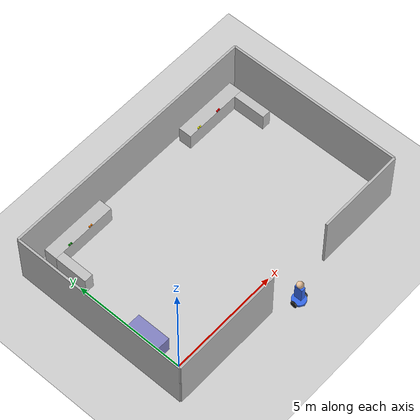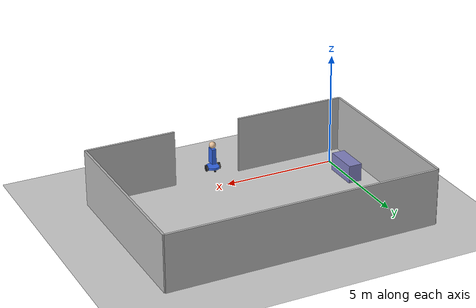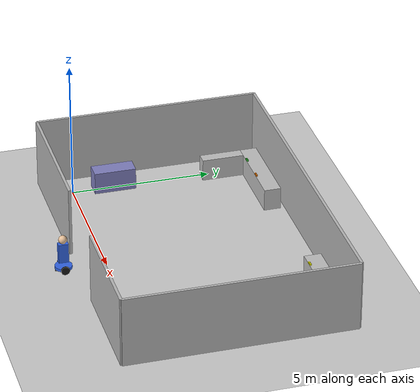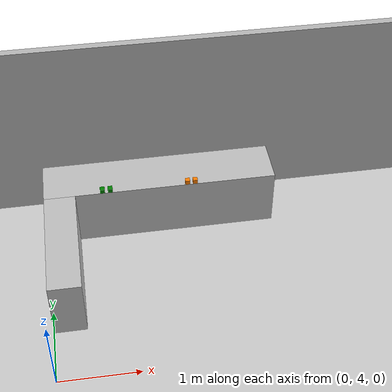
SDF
<?xml version="1.0"?>
<sdf version="1.6">
  <world name="mart">

    <include>
      <uri>model://ground_plane</uri>
    </include>
    <include>
      <uri>model://sun</uri>
    </include>

    <physics type="ode">
      <real_time_update_rate>1000.0</real_time_update_rate>
      <max_step_size>0.001</max_step_size>
      <real_time_factor>1.0</real_time_factor>
      <ode>
        <solver>
          <type>quick</type>
          <iters>150</iters>
          <sor>1.4</sor>
        </solver>
        <constraints>
          <cfm>1e-5</cfm>
          <erp>0.2</erp>
        </constraints>
      </ode>
    </physics>

    <model name="boundary_walls">
      <static>true</static>
      <pose>5 3 1.25 0 0 0</pose>
      <link name="link">
        <visual name="n_v">
          <pose>0 4 0 0 0 0</pose>
          <geometry><box><size>12.0 0.1 2.5</size></box></geometry>
        </visual>
        <collision name="n_c">
          <pose>0 4 0 0 0 0</pose>
          <geometry><box><size>12.0 0.1 2.5</size></box></geometry>
        </collision>
        <visual name="e_v">
          <pose>6 0 0 0 0 1.5708</pose>
          <geometry><box><size>8.0 0.1 2.5</size></box></geometry>
        </visual>
        <collision name="e_c">
          <pose>6 0 0 0 0 1.5708</pose>
          <geometry><box><size>8.0 0.1 2.5</size></box></geometry>
        </collision>
        <visual name="w_v">
          <pose>-6 0 0 0 0 1.5708</pose>
          <geometry><box><size>8.0 0.1 2.5</size></box></geometry>
        </visual>
        <collision name="w_c">
          <pose>-6 0 0 0 0 1.5708</pose>
          <geometry><box><size>8.0 0.1 2.5</size></box></geometry>
        </collision>
        <visual name="s_v_left">
          <pose>-3.5 -4 0 0 0 0</pose>
          <geometry><box><size>5.0 0.1 2.5</size></box></geometry>
        </visual>
        <collision name="s_c_left">
          <pose>-3.5 -4 0 0 0 0</pose>
          <geometry><box><size>5.0 0.1 2.5</size></box></geometry>
        </collision>
        <visual name="s_v_right">
          <pose>4.0 -4 0 0 0 0</pose>
          <geometry><box><size>4.0 0.1 2.5</size></box></geometry>
        </visual>
        <collision name="s_c_right">
          <pose>4.0 -4 0 0 0 0</pose>
          <geometry><box><size>4.0 0.1 2.5</size></box></geometry>
        </collision>
      </link>
    </model>

    <!-- 과일 진열대 (회색) -->
    <model name="shelf_fruits_group">
      <static>true</static>
      <pose>9.0 6.5 0.4 0 0 0</pose>
      <link name="link">
        <collision name="h_c">
          <pose>0 0 0 0 0 0</pose>
          <geometry><box><size>3.0 0.6 0.8</size></box></geometry>
        </collision>
        <visual name="h_v">
          <pose>0 0 0 0 0 0</pose>
          <geometry><box><size>3.0 0.6 0.8</size></box></geometry>
          <material>
            <ambient>0.75 0.75 0.75 1</ambient>
            <diffuse>0.75 0.75 0.75 1</diffuse>
          </material>
        </visual>
        <collision name="v_c">
          <pose>1.3 -1.05 0 0 0 0</pose>
          <geometry><box><size>0.4 1.5 0.8</size></box></geometry>
        </collision>
        <visual name="v_v">
          <pose>1.3 -1.05 0 0 0 0</pose>
          <geometry><box><size>0.4 1.5 0.8</size></box></geometry>
          <material>
            <ambient>0.75 0.75 0.75 1</ambient>
            <diffuse>0.75 0.75 0.75 1</diffuse>
          </material>
        </visual>
      </link>
    </model>

    <!-- 채소 진열대 (회색) -->
    <model name="shelf_veg_group">
      <static>true</static>
      <pose>1.5 6.5 0.4 0 0 0</pose>
      <link name="link">
        <collision name="h_c">
          <pose>0 0 0 0 0 0</pose>
          <geometry><box><size>3.0 0.6 0.8</size></box></geometry>
        </collision>
        <visual name="h_v">
          <pose>0 0 0 0 0 0</pose>
          <geometry><box><size>3.0 0.6 0.8</size></box></geometry>
          <material>
            <ambient>0.75 0.75 0.75 1</ambient>
            <diffuse>0.75 0.75 0.75 1</diffuse>
          </material>
        </visual>
        <collision name="v_c">
          <pose>-1.3 -1.05 0 0 0 0</pose>
          <geometry><box><size>0.4 1.5 0.8</size></box></geometry>
        </collision>
        <visual name="v_v">
          <pose>-1.3 -1.05 0 0 0 0</pose>
          <geometry><box><size>0.4 1.5 0.8</size></box></geometry>
          <material>
            <ambient>0.75 0.75 0.75 1</ambient>
            <diffuse>0.75 0.75 0.75 1</diffuse>
          </material>
        </visual>
      </link>
    </model>

    <!-- 바나나 x2 (노란색) -->
    <model name="banana_1">
      <static>false</static>
      <pose>8.0 6.23 0.83 0 0 0</pose>
      <link name="l">
        <inertial><mass>0.1</mass></inertial>
        <collision name="c">
          <geometry><box><size>0.06 0.06 0.06</size></box></geometry>
          <surface><friction><ode><mu>1.0</mu><mu2>1.0</mu2></ode></friction></surface>
        </collision>
        <visual name="v">
          <geometry><box><size>0.06 0.06 0.06</size></box></geometry>
          <material><ambient>1 1 0 1</ambient><diffuse>1 1 0 1</diffuse></material>
        </visual>
      </link>
    </model>

    <model name="banana_2">
      <static>false</static>
      <pose>8.1 6.23 0.83 0 0 0</pose>
      <link name="l">
        <inertial><mass>0.1</mass></inertial>
        <collision name="c">
          <geometry><box><size>0.06 0.06 0.06</size></box></geometry>
          <surface><friction><ode><mu>1.0</mu><mu2>1.0</mu2></ode></friction></surface>
        </collision>
        <visual name="v">
          <geometry><box><size>0.06 0.06 0.06</size></box></geometry>
          <material><ambient>1 1 0 1</ambient><diffuse>1 1 0 1</diffuse></material>
        </visual>
      </link>
    </model>

    <!-- 사과 x2 (빨간색) -->
    <model name="apple_1">
      <static>false</static>
      <pose>9.1 6.23 0.83 0 0 0</pose>
      <link name="l">
        <inertial><mass>0.1</mass></inertial>
        <collision name="c">
          <geometry><box><size>0.06 0.06 0.06</size></box></geometry>
          <surface><friction><ode><mu>1.0</mu><mu2>1.0</mu2></ode></friction></surface>
        </collision>
        <visual name="v">
          <geometry><box><size>0.06 0.06 0.06</size></box></geometry>
          <material><ambient>1 0 0 1</ambient><diffuse>1 0 0 1</diffuse></material>
        </visual>
      </link>
    </model>

    <model name="apple_2">
      <static>false</static>
      <pose>9.2 6.23 0.83 0 0 0</pose>
      <link name="l">
        <inertial><mass>0.1</mass></inertial>
        <collision name="c">
          <geometry><box><size>0.06 0.06 0.06</size></box></geometry>
          <surface><friction><ode><mu>1.0</mu><mu2>1.0</mu2></ode></friction></surface>
        </collision>
        <visual name="v">
          <geometry><box><size>0.06 0.06 0.06</size></box></geometry>
          <material><ambient>1 0 0 1</ambient><diffuse>1 0 0 1</diffuse></material>
        </visual>
      </link>
    </model>

    <!-- 브로콜리 x2 (초록색) -->
    <model name="broccoli_1">
      <static>false</static>
      <pose>0.75 6.23 0.83 0 0 0</pose>
      <link name="l">
        <inertial><mass>0.1</mass></inertial>
        <collision name="c">
          <geometry><box><size>0.06 0.06 0.06</size></box></geometry>
          <surface><friction><ode><mu>1.0</mu><mu2>1.0</mu2></ode></friction></surface>
        </collision>
        <visual name="v">
          <geometry><box><size>0.06 0.06 0.06</size></box></geometry>
          <material><ambient>0 0.5 0 1</ambient><diffuse>0 0.5 0 1</diffuse></material>
        </visual>
      </link>
    </model>

    <model name="broccoli_2">
      <static>false</static>
      <pose>0.85 6.23 0.83 0 0 0</pose>
      <link name="l">
        <inertial><mass>0.1</mass></inertial>
        <collision name="c">
          <geometry><box><size>0.06 0.06 0.06</size></box></geometry>
          <surface><friction><ode><mu>1.0</mu><mu2>1.0</mu2></ode></friction></surface>
        </collision>
        <visual name="v">
          <geometry><box><size>0.06 0.06 0.06</size></box></geometry>
          <material><ambient>0 0.5 0 1</ambient><diffuse>0 0.5 0 1</diffuse></material>
        </visual>
      </link>
    </model>

    <!-- 당근 x2 (주황색) -->
    <model name="carrot_1">
      <static>false</static>
      <pose>1.85 6.23 0.83 0 0 0</pose>
      <link name="l">
        <inertial><mass>0.1</mass></inertial>
        <collision name="c">
          <geometry><box><size>0.06 0.06 0.06</size></box></geometry>
          <surface><friction><ode><mu>1.0</mu><mu2>1.0</mu2></ode></friction></surface>
        </collision>
        <visual name="v">
          <geometry><box><size>0.06 0.06 0.06</size></box></geometry>
          <material><ambient>1 0.5 0 1</ambient><diffuse>1 0.5 0 1</diffuse></material>
        </visual>
      </link>
    </model>

    <model name="carrot_2">
      <static>false</static>
      <pose>1.95 6.23 0.83 0 0 0</pose>
      <link name="l">
        <inertial><mass>0.1</mass></inertial>
        <collision name="c">
          <geometry><box><size>0.06 0.06 0.06</size></box></geometry>
          <surface><friction><ode><mu>1.0</mu><mu2>1.0</mu2></ode></friction></surface>
        </collision>
        <visual name="v">
          <geometry><box><size>0.06 0.06 0.06</size></box></geometry>
          <material><ambient>1 0.5 0 1</ambient><diffuse>1 0.5 0 1</diffuse></material>
        </visual>
      </link>
    </model>

    <model name="checkout_counter">
      <static>true</static>
      <pose>0.0 1.5 0.4 0 0 1.5708</pose>
      <link name="link">
        <collision name="c">
          <geometry><box><size>1.5 0.6 0.8</size></box></geometry>
        </collision>
        <visual name="v">
          <geometry><box><size>1.5 0.6 0.8</size></box></geometry>
          <material>
            <ambient>0.5 0.5 0.75 1</ambient>
            <diffuse>0.5 0.5 0.75 1</diffuse>
          </material>
        </visual>
      </link>
    </model>

    <model name="person">
      <pose>5.0 -1.5 0.19 0 0 -1.5708</pose>

      <link name="base">
        <inertial>
          <mass>20.0</mass>
          <inertia>
            <ixx>1.0</ixx><ixy>0</ixy><ixz>0</ixz>
            <iyy>1.0</iyy><iyz>0</iyz><izz>0.5</izz>
          </inertia>
        </inertial>
        <visual name="base_v">
          <pose>0 0 0 0 0 0</pose>
          <geometry><cylinder><radius>0.3</radius><length>0.1</length></cylinder></geometry>
          <material><ambient>0.2 0.4 0.9 1</ambient><diffuse>0.2 0.4 0.9 1</diffuse></material>
        </visual>
        <collision name="base_c">
          <pose>0 0 0 0 0 0</pose>
          <geometry><cylinder><radius>0.3</radius><length>0.1</length></cylinder></geometry>
        </collision>
        <visual name="torso_v">
          <pose>0 0 0.55 0 0 0</pose>
          <geometry><box><size>0.35 0.2 0.7</size></box></geometry>
          <material><ambient>0.2 0.4 0.9 1</ambient><diffuse>0.2 0.4 0.9 1</diffuse></material>
        </visual>
        <visual name="head_v">
          <pose>0 0 1.05 0 0 0</pose>
          <geometry><sphere><radius>0.15</radius></sphere></geometry>
          <material><ambient>0.9 0.75 0.6 1</ambient><diffuse>0.9 0.75 0.6 1</diffuse></material>
        </visual>
      </link>

      <link name="left_wheel">
        <pose>0 0.3 0 1.5708 0 0</pose>
        <inertial>
          <mass>2.0</mass>
          <inertia><ixx>0.05</ixx><ixy>0</ixy><ixz>0</ixz><iyy>0.05</iyy><iyz>0</iyz><izz>0.05</izz></inertia>
        </inertial>
        <visual name="v">
          <geometry><cylinder><radius>0.15</radius><length>0.05</length></cylinder></geometry>
          <material><ambient>0.1 0.1 0.1 1</ambient><diffuse>0.1 0.1 0.1 1</diffuse></material>
        </visual>
        <collision name="c">
          <geometry><cylinder><radius>0.15</radius><length>0.05</length></cylinder></geometry>
          <surface><friction><ode><mu>10.0</mu><mu2>10.0</mu2></ode></friction></surface>
        </collision>
      </link>

      <link name="right_wheel">
        <pose>0 -0.3 0 1.5708 0 0</pose>
        <inertial>
          <mass>2.0</mass>
          <inertia><ixx>0.05</ixx><ixy>0</ixy><ixz>0</ixz><iyy>0.05</iyy><iyz>0</iyz><izz>0.05</izz></inertia>
        </inertial>
        <visual name="v">
          <geometry><cylinder><radius>0.15</radius><length>0.05</length></cylinder></geometry>
          <material><ambient>0.1 0.1 0.1 1</ambient><diffuse>0.1 0.1 0.1 1</diffuse></material>
        </visual>
        <collision name="c">
          <geometry><cylinder><radius>0.15</radius><length>0.05</length></cylinder></geometry>
          <surface><friction><ode><mu>10.0</mu><mu2>10.0</mu2></ode></friction></surface>
        </collision>
      </link>

      <link name="caster">
        <pose>0.25 0 -0.1 0 0 0</pose>
        <inertial><mass>0.5</mass></inertial>
        <visual name="v">
          <geometry><sphere><radius>0.05</radius></sphere></geometry>
          <material><ambient>0.1 0.1 0.1 1</ambient></material>
        </visual>
        <collision name="c">
          <geometry><sphere><radius>0.05</radius></sphere></geometry>
          <surface><friction><ode><mu>0.0</mu><mu2>0.0</mu2></ode></friction></surface>
        </collision>
      </link>

      <link name="caster_back">
        <pose>-0.25 0 -0.1 0 0 0</pose>
        <inertial><mass>0.5</mass></inertial>
        <visual name="v">
          <geometry><sphere><radius>0.05</radius></sphere></geometry>
          <material><ambient>0.1 0.1 0.1 1</ambient></material>
        </visual>
        <collision name="c">
          <geometry><sphere><radius>0.05</radius></sphere></geometry>
          <surface><friction><ode><mu>0.0</mu><mu2>0.0</mu2></ode></friction></surface>
        </collision>
      </link>

      <joint name="left_wheel_joint" type="revolute">
        <parent>base</parent><child>left_wheel</child>
        <axis><xyz>0 0 1</xyz><limit><lower>-1e16</lower><upper>1e16</upper></limit></axis>
      </joint>

      <joint name="right_wheel_joint" type="revolute">
        <parent>base</parent><child>right_wheel</child>
        <axis><xyz>0 0 1</xyz><limit><lower>-1e16</lower><upper>1e16</upper></limit></axis>
      </joint>

      <joint name="caster_joint" type="fixed">
        <parent>base</parent><child>caster</child>
      </joint>

      <joint name="caster_back_joint" type="fixed">
        <parent>base</parent><child>caster_back</child>
      </joint>

      <plugin name="person_diff_drive" filename="libgazebo_ros_diff_drive.so">
        <ros><namespace>/person</namespace></ros>
        <left_joint>left_wheel_joint</left_joint>
        <right_joint>right_wheel_joint</right_joint>
        <wheel_separation>0.6</wheel_separation>
        <wheel_diameter>0.3</wheel_diameter>
        <max_wheel_torque>50</max_wheel_torque>
        <max_wheel_acceleration>2.0</max_wheel_acceleration>
        <publish_odom>true</publish_odom>
        <publish_odom_tf>true</publish_odom_tf>
        <odometry_frame>person_odom</odometry_frame>
        <robot_base_frame>person</robot_base_frame>
      </plugin>
    </model>

  </world>
</sdf>
